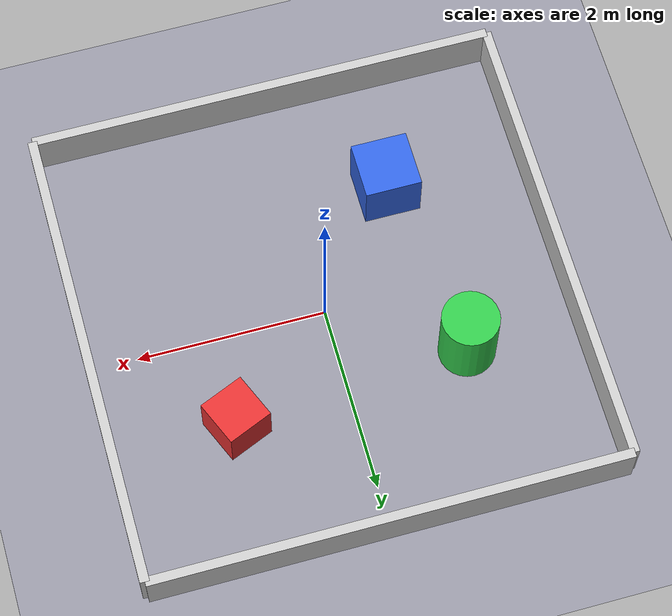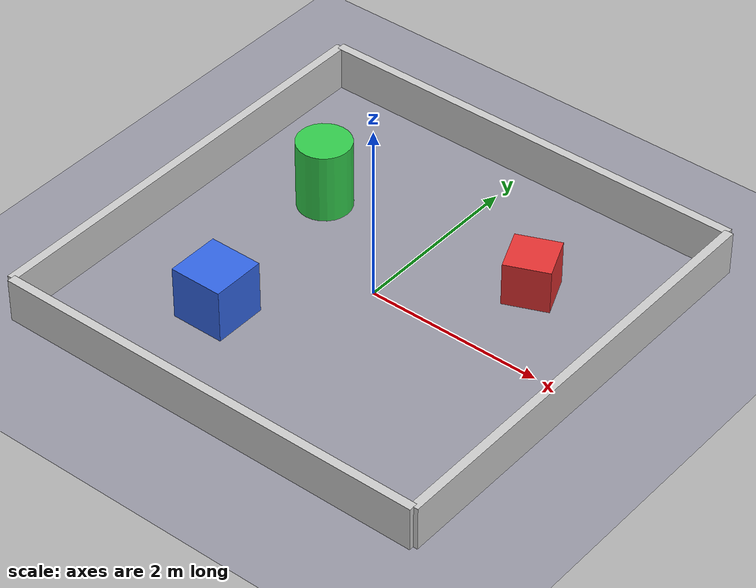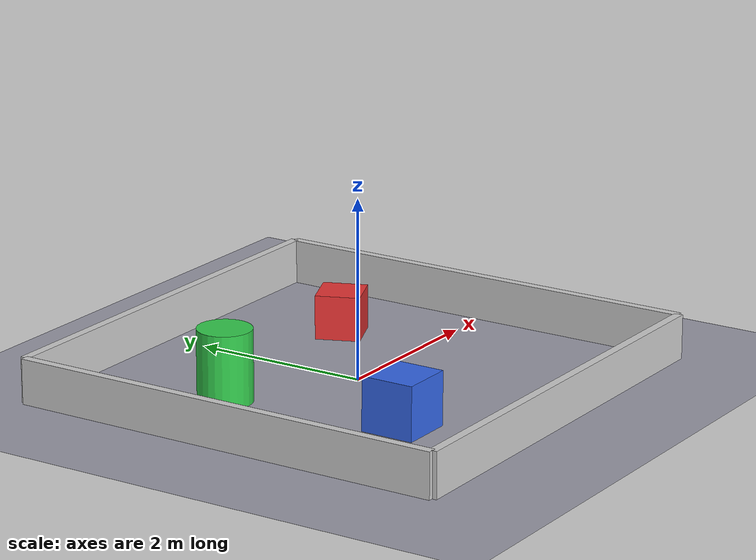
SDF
<?xml version="1.0" ?>
<sdf version="1.10">
  <world name="custom_world">
    <physics name="1ms" type="ignored">
      <max_step_size>0.001</max_step_size>
      <real_time_factor>1.0</real_time_factor>
    </physics>

    <plugin filename="gz-sim-physics-system" name="gz::sim::systems::Physics"/>
    <plugin filename="gz-sim-user-commands-system" name="gz::sim::systems::UserCommands"/>
    <plugin filename="gz-sim-scene-broadcaster-system" name="gz::sim::systems::SceneBroadcaster"/>

    <scene>
      <ambient>0.4 0.4 0.4 1</ambient>
      <background>0.7 0.8 0.9 1</background>
      <shadows>true</shadows>
    </scene>

    <light type="directional" name="sun">
      <cast_shadows>true</cast_shadows>
      <pose>0 0 10 0 0 0</pose>
      <diffuse>0.9 0.9 0.9 1</diffuse>
      <specular>0.2 0.2 0.2 1</specular>
      <direction>-0.4 0.2 -0.9</direction>
    </light>

    <light type="point" name="warm_lamp">
      <pose>0 0 3 0 0 0</pose>
      <diffuse>1.0 0.6 0.3 1</diffuse>
      <specular>0.2 0.2 0.2 1</specular>
      <cast_shadows>false</cast_shadows>
      <attenuation>
        <range>20</range>
        <constant>0.2</constant>
        <linear>0.1</linear>
        <quadratic>0.01</quadratic>
      </attenuation>
    </light>

    <model name="ground_plane">
      <static>true</static>
      <link name="link">
        <collision name="collision">
          <geometry><plane><normal>0 0 1</normal><size>50 50</size></plane></geometry>
        </collision>
        <visual name="visual">
          <geometry><plane><normal>0 0 1</normal><size>50 50</size></plane></geometry>
          <material>
            <ambient>0.5 0.5 0.55 1</ambient>
            <diffuse>0.6 0.6 0.65 1</diffuse>
          </material>
        </visual>
      </link>
    </model>

    <!-- Four perimeter walls forming a 5 m square arena. -->
    <model name="wall_north">
      <static>true</static>
      <pose>0 2.5 0.25 0 0 0</pose>
      <link name="link">
        <collision name="collision"><geometry><box><size>5 0.1 0.5</size></box></geometry></collision>
        <visual name="visual">
          <geometry><box><size>5 0.1 0.5</size></box></geometry>
          <material><ambient>0.7 0.7 0.7 1</ambient><diffuse>0.8 0.8 0.8 1</diffuse></material>
        </visual>
      </link>
    </model>
    <model name="wall_south">
      <static>true</static>
      <pose>0 -2.5 0.25 0 0 0</pose>
      <link name="link">
        <collision name="collision"><geometry><box><size>5 0.1 0.5</size></box></geometry></collision>
        <visual name="visual">
          <geometry><box><size>5 0.1 0.5</size></box></geometry>
          <material><ambient>0.7 0.7 0.7 1</ambient><diffuse>0.8 0.8 0.8 1</diffuse></material>
        </visual>
      </link>
    </model>
    <model name="wall_east">
      <static>true</static>
      <pose>2.5 0 0.25 0 0 0</pose>
      <link name="link">
        <collision name="collision"><geometry><box><size>0.1 5 0.5</size></box></geometry></collision>
        <visual name="visual">
          <geometry><box><size>0.1 5 0.5</size></box></geometry>
          <material><ambient>0.7 0.7 0.7 1</ambient><diffuse>0.8 0.8 0.8 1</diffuse></material>
        </visual>
      </link>
    </model>
    <model name="wall_west">
      <static>true</static>
      <pose>-2.5 0 0.25 0 0 0</pose>
      <link name="link">
        <collision name="collision"><geometry><box><size>0.1 5 0.5</size></box></geometry></collision>
        <visual name="visual">
          <geometry><box><size>0.1 5 0.5</size></box></geometry>
          <material><ambient>0.7 0.7 0.7 1</ambient><diffuse>0.8 0.8 0.8 1</diffuse></material>
        </visual>
      </link>
    </model>

    <!-- A few colored obstacles. -->
    <model name="red_box">
      <static>true</static>
      <pose>1.2 1.0 0.25 0 0 0.4</pose>
      <link name="link">
        <collision name="collision"><geometry><box><size>0.5 0.5 0.5</size></box></geometry></collision>
        <visual name="visual">
          <geometry><box><size>0.5 0.5 0.5</size></box></geometry>
          <material><ambient>0.8 0.2 0.2 1</ambient><diffuse>0.9 0.2 0.2 1</diffuse></material>
        </visual>
      </link>
    </model>
    <model name="green_cylinder">
      <static>true</static>
      <pose>-1.3 0.8 0.4 0 0 0</pose>
      <link name="link">
        <collision name="collision"><geometry><cylinder><radius>0.3</radius><length>0.8</length></cylinder></geometry></collision>
        <visual name="visual">
          <geometry><cylinder><radius>0.3</radius><length>0.8</length></cylinder></geometry>
          <material><ambient>0.2 0.7 0.3 1</ambient><diffuse>0.2 0.8 0.3 1</diffuse></material>
        </visual>
      </link>
    </model>
    <model name="blue_box">
      <static>true</static>
      <pose>-1.0 -1.2 0.3 0 0 0</pose>
      <link name="link">
        <collision name="collision"><geometry><box><size>0.6 0.6 0.6</size></box></geometry></collision>
        <visual name="visual">
          <geometry><box><size>0.6 0.6 0.6</size></box></geometry>
          <material><ambient>0.2 0.4 0.8 1</ambient><diffuse>0.2 0.4 0.9 1</diffuse></material>
        </visual>
      </link>
    </model>
  </world>
</sdf>
